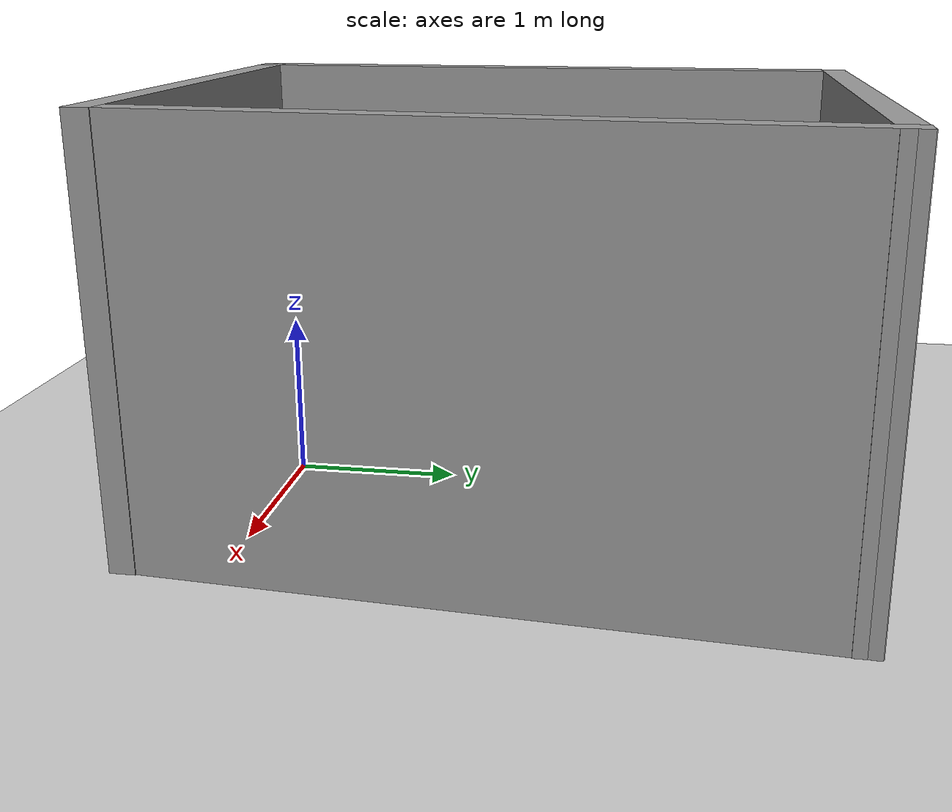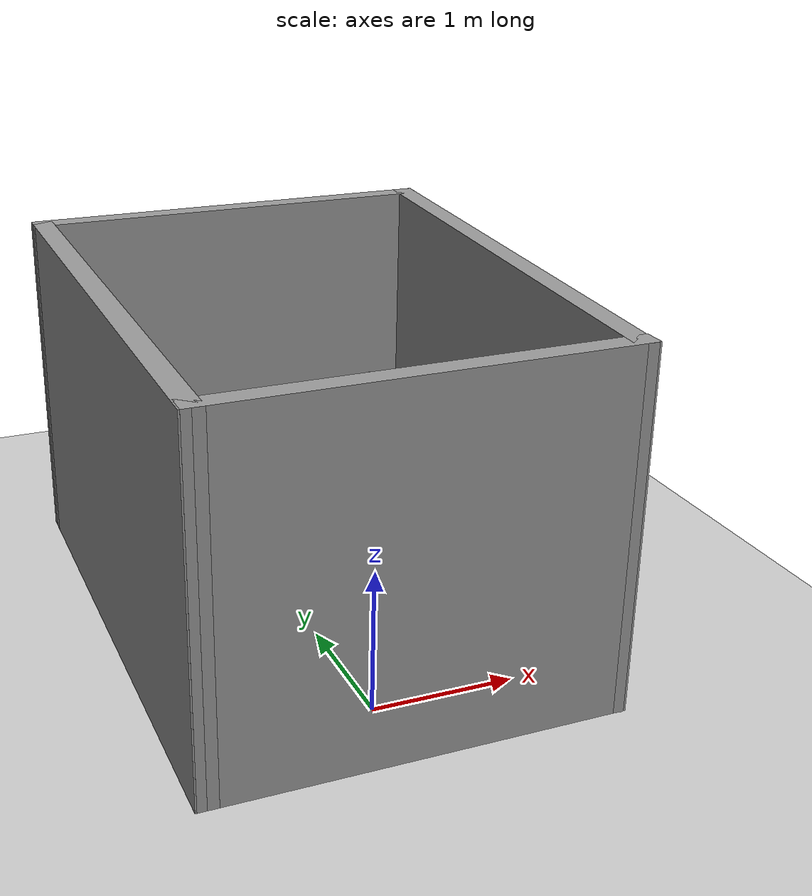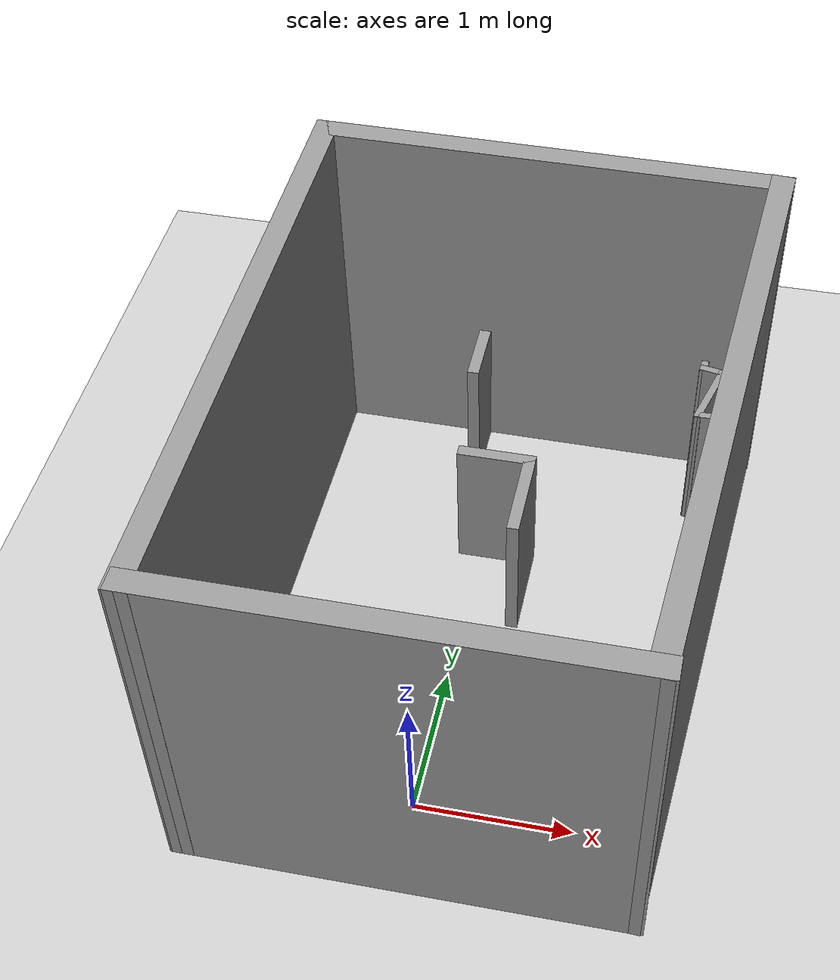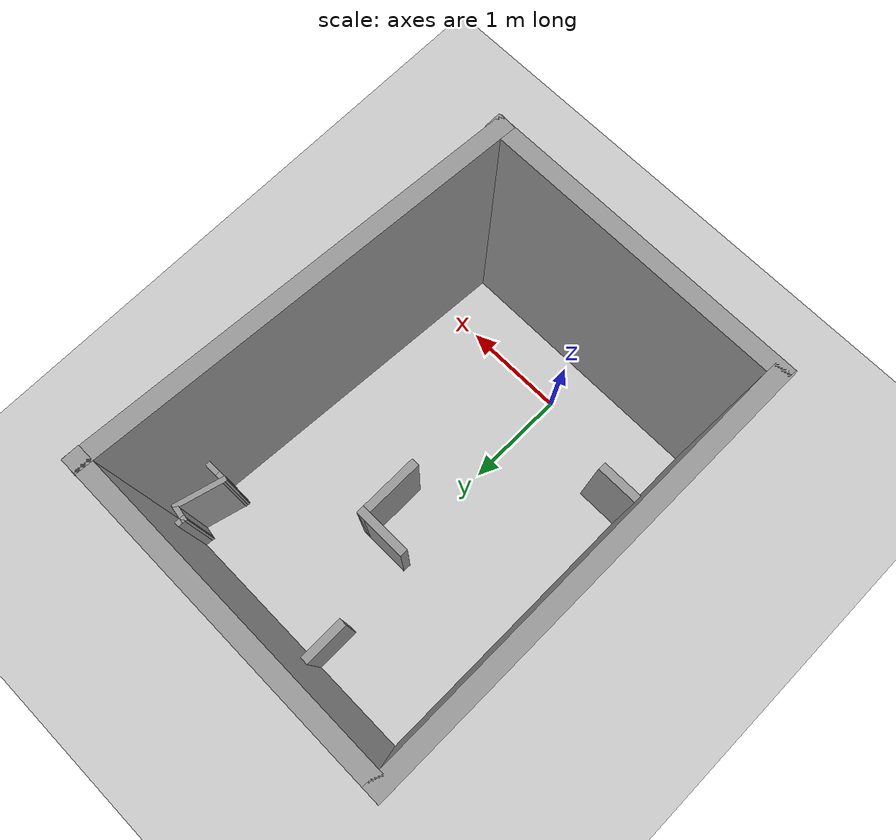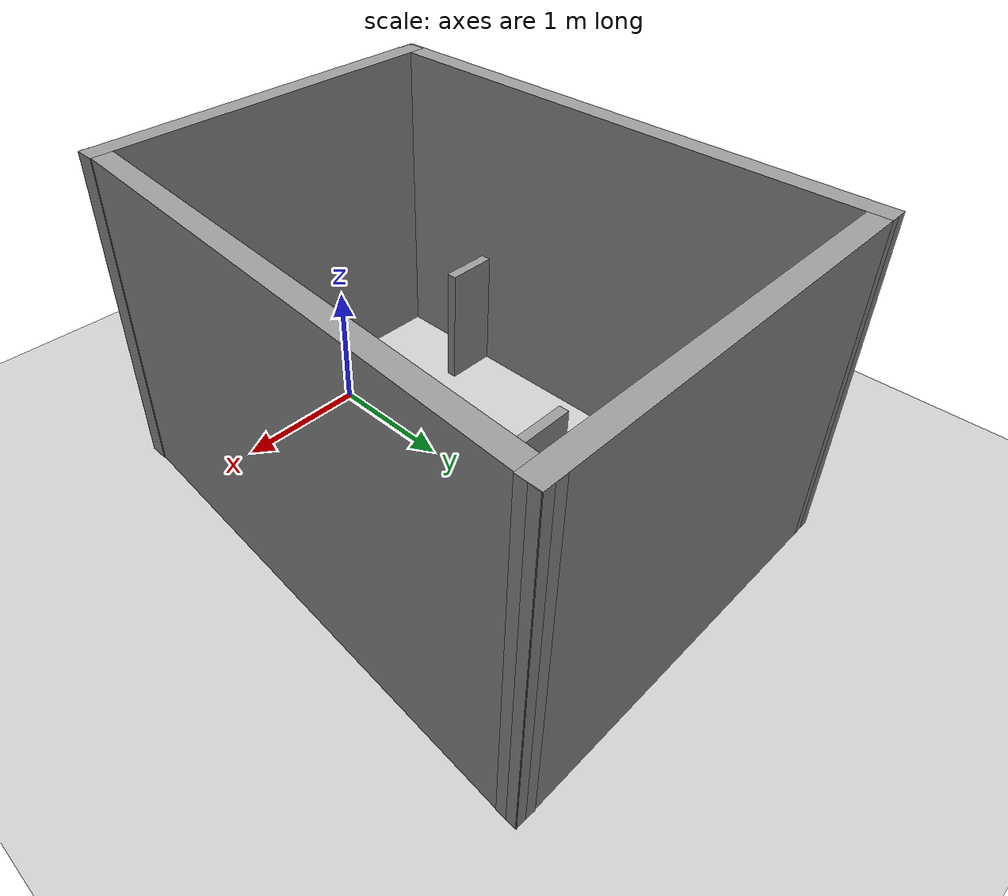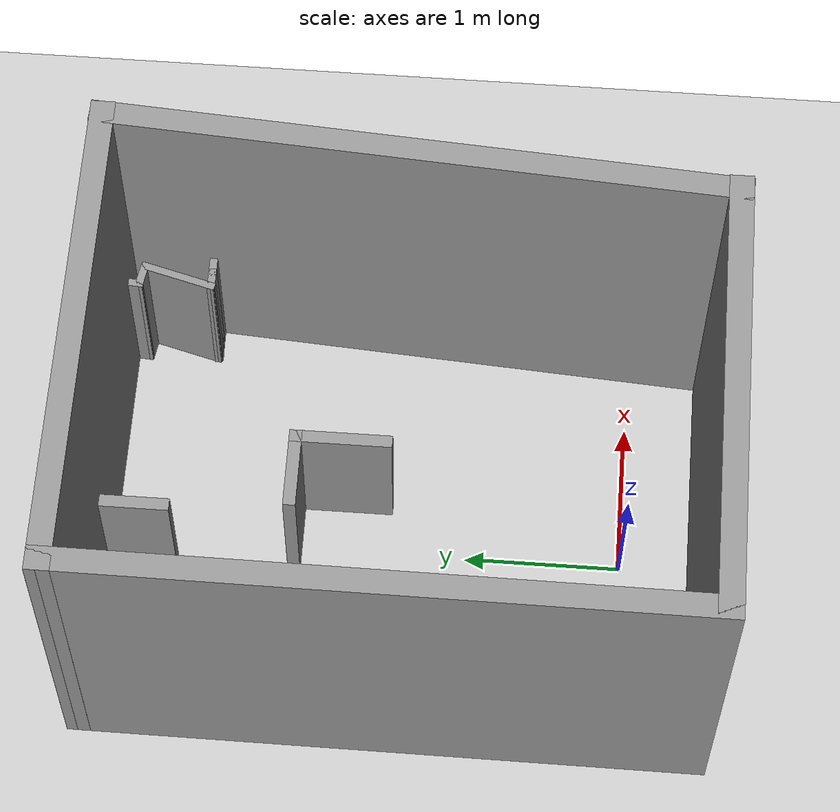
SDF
<sdf version="1.6">
 <world name="default">
  <light name="sun" type="directional">
   <pose>0 0 10 0 -0 0</pose>
   <diffuse>0.8 0.8 0.8 1</diffuse>
   <specular>0.2 0.2 0.2 1</specular>
   <attenuation>
    <range>1000</range>
    <constant>0.9</constant>
    <linear>0.01</linear>
    <quadratic>0.001</quadratic>
   </attenuation>
   <direction>-0.5 0.1 -0.9</direction>
  </light>
  <model name="ground_plane">
   <static>1</static>
   <link name="link">
    <collision name="collision">
     <geometry><plane><normal>0 0 1</normal><size>100 100</size></plane></geometry>
     <surface>
      <contact><collide_bitmask>65535</collide_bitmask></contact>
      <friction><ode><mu>100</mu><mu2>50</mu2></ode></friction>
     </surface>
    </collision>
    <visual name="visual">
     <cast_shadows>0</cast_shadows>
     <geometry><plane><normal>0 0 1</normal><size>100 100</size></plane></geometry>
     <material>
      <script><uri>file://media/materials/scripts/gazebo.material</uri><name>Gazebo/Grey</name></script>
     </material>
    </visual>
   </link>
  </model>
  <gravity>0 0 -9.8</gravity>
  <magnetic_field>6e-06 2.3e-05 -4.2e-05</magnetic_field>
  <atmosphere type="adiabatic"/>
  <physics name="default_physics" default="0" type="ode">
   <max_step_size>0.001</max_step_size>
   <real_time_factor>1</real_time_factor>
   <real_time_update_rate>1000</real_time_update_rate>
  </physics>
  <scene><ambient>0.4 0.4 0.4 1</ambient><background>0.7 0.7 0.7 1</background><shadows>1</shadows></scene>
  <audio><device>default</device></audio>
  <spherical_coordinates>
   <surface_model>EARTH_WGS84</surface_model>
   <latitude_deg>0</latitude_deg>
   <longitude_deg>0</longitude_deg>
   <elevation>0</elevation>
   <heading_deg>0</heading_deg>
  </spherical_coordinates>
  <model name="workshop">
   <pose>0.196993 1.41781 0 0 -0 0</pose>
   <link name="Wall_1">
    <collision name="Wall_1_Collision">
     <geometry><box><size>2.86 0.15 2.5</size></box></geometry>
     <pose>0 0 1.25 0 -0 0</pose>
    </collision>
    <visual name="Wall_1_Visual">
     <pose>0 0 1.25 0 -0 0</pose>
     <geometry><box><size>2.86 0.15 2.5</size></box></geometry>
     <material>
      <script><uri>file://media/materials/scripts/gazebo.material</uri><name>Gazebo/Grey</name></script>
      <ambient>1 1 1 1</ambient>
     </material>
     <meta><layer>0</layer></meta>
    </visual>
    <pose>-0.120993 -1.93781 0 0 -0 3.14159</pose>
   </link>
   <link name="Wall_10">
    <collision name="Wall_10_Collision">
     <geometry><box><size>0.52 0.08 1</size></box></geometry>
     <pose>0 0 0.5 0 -0 0</pose>
    </collision>
    <visual name="Wall_10_Visual">
     <pose>0 0 0.5 0 -0 0</pose>
     <geometry><box><size>0.52 0.08 1</size></box></geometry>
     <material>
      <script><uri>file://media/materials/scripts/gazebo.material</uri><name>Gazebo/Grey</name></script>
      <ambient>1 1 1 1</ambient>
     </material>
     <meta><layer>0</layer></meta>
    </visual>
    <pose>-0.085993 0.682187 0 0 -0 0</pose>
   </link>
   <link name="Wall_11">
    <collision name="Wall_11_Collision">
     <geometry><box><size>0.65 0.08 1</size></box></geometry>
     <pose>0 0 0.5 0 -0 0</pose>
    </collision>
    <visual name="Wall_11_Visual">
     <pose>0 0 0.5 0 -0 0</pose>
     <geometry><box><size>0.65 0.08 1</size></box></geometry>
     <material>
      <script><uri>file://media/materials/scripts/gazebo.material</uri><name>Gazebo/Grey</name></script>
      <ambient>1 1 1 1</ambient>
     </material>
     <meta><layer>0</layer></meta>
    </visual>
    <pose>0.134007 0.397187 0 0 -0 -1.5708</pose>
   </link>
   <link name="Wall_13">
    <collision name="Wall_13_Collision">
     <geometry><box><size>0.128478 0.05 1</size></box></geometry>
     <pose>0 0 0.5 0 -0 0</pose>
    </collision>
    <visual name="Wall_13_Visual">
     <pose>0 0 0.5 0 -0 0</pose>
     <geometry><box><size>0.128478 0.05 1</size></box></geometry>
     <material>
      <script><uri>file://media/materials/scripts/gazebo.material</uri><name>Gazebo/Grey</name></script>
      <ambient>1 1 1 1</ambient>
     </material>
     <meta><layer>0</layer></meta>
    </visual>
    <pose>1.20093 1.91809 0 0 -0 2.88143</pose>
   </link>
   <link name="Wall_14">
    <collision name="Wall_14_Collision">
     <geometry><box><size>0.2 0.05 1</size></box></geometry>
     <pose>0 0 0.5 0 -0 0</pose>
    </collision>
    <visual name="Wall_14_Visual">
     <pose>0 0 0.5 0 -0 0</pose>
     <geometry><box><size>0.2 0.05 1</size></box></geometry>
     <material>
      <script><uri>file://media/materials/scripts/gazebo.material</uri><name>Gazebo/Grey</name></script>
      <ambient>1 1 1 1</ambient>
     </material>
     <meta><layer>0</layer></meta>
    </visual>
    <pose>1.15701 1.85319 0 0 -0 -1.65063</pose>
   </link>
   <link name="Wall_15">
    <collision name="Wall_15_Collision">
     <geometry><box><size>0.181815 0.05 1</size></box></geometry>
     <pose>0 0 0.5 0 -0 0</pose>
    </collision>
    <visual name="Wall_15_Visual">
     <pose>0 0 0.5 0 -0 0</pose>
     <geometry><box><size>0.181815 0.05 1</size></box></geometry>
     <material>
      <script><uri>file://media/materials/scripts/gazebo.material</uri><name>Gazebo/Grey</name></script>
      <ambient>1 1 1 1</ambient>
     </material>
     <meta><layer>0</layer></meta>
    </visual>
    <pose>1.21602 1.76738 0 0 -0 -0.164735</pose>
   </link>
   <link name="Wall_16">
    <collision name="Wall_16_Collision">
     <geometry><box><size>0.5 0.05 1</size></box></geometry>
     <pose>0 0 0.5 0 -0 0</pose>
    </collision>
    <visual name="Wall_16_Visual">
     <pose>0 0 0.5 0 -0 0</pose>
     <geometry><box><size>0.5 0.05 1</size></box></geometry>
     <material>
      <script><uri>file://media/materials/scripts/gazebo.material</uri><name>Gazebo/Grey</name></script>
      <ambient>1 1 1 1</ambient>
     </material>
     <meta><layer>0</layer></meta>
    </visual>
    <pose>1.22302 1.53472 0 0 -0 -1.83143</pose>
   </link>
   <link name="Wall_18">
    <collision name="Wall_18_Collision">
     <geometry><box><size>0.15 0.05 1</size></box></geometry>
     <pose>0 0 0.5 0 -0 0</pose>
    </collision>
    <visual name="Wall_18_Visual">
     <pose>0 0 0.5 0 -0 0</pose>
     <geometry><box><size>0.15 0.05 1</size></box></geometry>
     <material>
      <script><uri>file://media/materials/scripts/gazebo.material</uri><name>Gazebo/Grey</name></script>
      <ambient>1 1 1 1</ambient>
     </material>
     <meta><layer>0</layer></meta>
    </visual>
    <pose>1.21501 1.31719 0 0 -0 0</pose>
   </link>
   <link name="Wall_19">
    <collision name="Wall_19_Collision">
     <geometry><box><size>0.149562 0.05 1</size></box></geometry>
     <pose>0 0 0.5 0 -0 0</pose>
    </collision>
    <visual name="Wall_19_Visual">
     <pose>0 0 0.5 0 -0 0</pose>
     <geometry><box><size>0.149562 0.05 1</size></box></geometry>
     <material>
      <script><uri>file://media/materials/scripts/gazebo.material</uri><name>Gazebo/Grey</name></script>
      <ambient>1 1 1 1</ambient>
     </material>
     <meta><layer>0</layer></meta>
    </visual>
    <pose>1.31501 1.31719 0 0 -0 0</pose>
   </link>
   <link name="Wall_2">
    <collision name="Wall_2_Collision">
     <geometry><box><size>4.03005 0.15 2.5</size></box></geometry>
     <pose>0 0 1.25 0 -0 0</pose>
    </collision>
    <visual name="Wall_2_Visual">
     <pose>0 0 1.25 0 -0 0</pose>
     <geometry><box><size>4.03005 0.15 2.5</size></box></geometry>
     <material>
      <script><uri>file://media/materials/scripts/gazebo.material</uri><name>Gazebo/Grey</name></script>
      <ambient>1 1 1 1</ambient>
     </material>
     <meta><layer>0</layer></meta>
    </visual>
    <pose>-1.47724 0.002187 0 0 -0 1.56551</pose>
   </link>
   <link name="Wall_3">
    <collision name="Wall_3_Collision">
     <geometry><box><size>3.10007 0.15 2.5</size></box></geometry>
     <pose>0 0 1.25 0 -0 0</pose>
    </collision>
    <visual name="Wall_3_Visual">
     <pose>0 0 1.25 0 -0 0</pose>
     <geometry><box><size>3.10007 0.15 2.5</size></box></geometry>
     <material>
      <script><uri>file://media/materials/scripts/gazebo.material</uri><name>Gazebo/Grey</name></script>
      <ambient>1 1 1 1</ambient>
     </material>
     <meta><layer>0</layer></meta>
    </visual>
    <pose>0.008007 1.93219 0 0 -0 -0.00678</pose>
   </link>
   <link name="Wall_4">
    <collision name="Wall_4_Collision">
     <geometry><box><size>4.01878 0.15 2.5</size></box></geometry>
     <pose>0 0 1.25 0 -0 0</pose>
    </collision>
    <visual name="Wall_4_Visual">
     <pose>0 0 1.25 0 -0 0</pose>
     <geometry><box><size>4.01878 0.15 2.5</size></box></geometry>
     <material>
      <script><uri>file://media/materials/scripts/gazebo.material</uri><name>Gazebo/Grey</name></script>
      <ambient>1 1 1 1</ambient>
     </material>
     <meta><layer>0</layer></meta>
    </visual>
    <pose>1.35276 -0.007813 0 0 -0 -1.63818</pose>
   </link>
   <link name="Wall_6">
    <collision name="Wall_6_Collision">
     <geometry><box><size>0.48 0.08 1</size></box></geometry>
     <pose>0 0 0.5 0 -0 0</pose>
    </collision>
    <visual name="Wall_6_Visual">
     <pose>0 0 0.5 0 -0 0</pose>
     <geometry><box><size>0.48 0.08 1</size></box></geometry>
     <material>
      <script><uri>file://media/materials/scripts/gazebo.material</uri><name>Gazebo/Grey</name></script>
      <ambient>1 1 1 1</ambient>
     </material>
     <meta><layer>0</layer></meta>
    </visual>
    <pose>-1.23899 -1.01281 0 0 -0 0</pose>
   </link>
   <link name="Wall_8">
    <collision name="Wall_8_Collision">
     <geometry><box><size>0.57 0.08 1</size></box></geometry>
     <pose>0 0 0.5 0 -0 0</pose>
    </collision>
    <visual name="Wall_8_Visual">
     <pose>0 0 0.5 0 -0 0</pose>
     <geometry><box><size>0.57 0.08 1</size></box></geometry>
     <material>
      <script><uri>file://media/materials/scripts/gazebo.material</uri><name>Gazebo/Grey</name></script>
      <ambient>1 1 1 1</ambient>
     </material>
     <meta><layer>0</layer></meta>
    </visual>
    <pose>-0.396993 1.70719 0 0 -0 -1.5708</pose>
   </link>
   <static>1</static>
  </model>
 </world>
</sdf>
